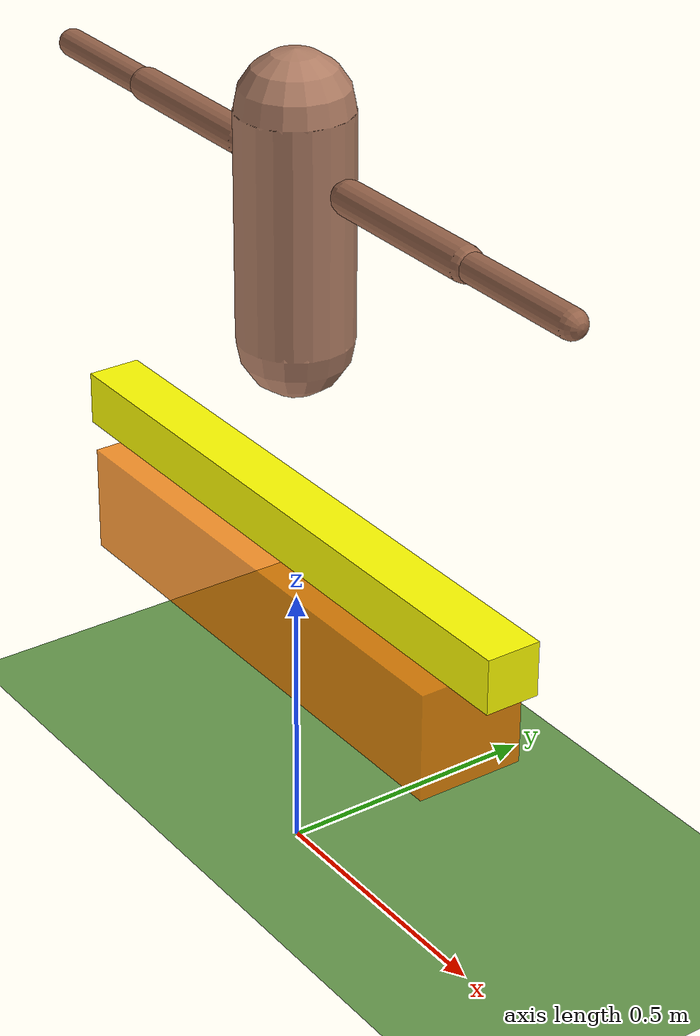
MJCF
<?xml version="1.0" ?>
<mujoco model="myoupperbody_placeholder">
  <option timestep="0.002" gravity="0 0 -9.81" integrator="RK4"/>

  <visual>
    <global offwidth="1024" offheight="1024"/>
    <map znear="0.01" zfar="50"/>
    <headlight diffuse="0.8 0.8 0.8" ambient="0.3 0.3 0.3"/>
  </visual>

  <worldbody>
    <!-- Ground plane -->
    <geom name="floor" type="plane" size="10 10 0.1" rgba="0.4 0.6 0.3 1"/>

    <!-- Placeholder message -->
    <body name="placeholder_info" pos="0 0 0.5">
      <geom name="info_box" type="box" size="0.5 0.1 0.1"
            rgba="1 0.5 0 0.8" mass="1"/>
      <geom name="info_text" type="box" size="0.6 0.05 0.05"
            pos="0 0 0.15" rgba="1 1 0 1"/>
    </body>

    <!-- Simple torso -->
    <body name="torso" pos="0 0 1.0">
      <freejoint/>
      <geom name="torso_geom" type="capsule" fromto="0 0 0 0 0 0.4"
            size="0.1" rgba="0.7 0.5 0.4 1" mass="20"/>

      <!-- Simple arms -->
      <body name="left_arm" pos="-0.15 0 0.3">
        <joint name="l_shoulder" type="hinge" axis="0 1 0" range="-2 2"/>
        <geom name="l_upper_arm" type="capsule" fromto="0 0 0 -0.3 0 0"
              size="0.03" rgba="0.6 0.4 0.3 1" mass="2"/>

        <body name="left_forearm" pos="-0.3 0 0">
          <joint name="l_elbow" type="hinge" axis="0 1 0" range="-2.5 0"/>
          <geom name="l_forearm" type="capsule" fromto="0 0 0 -0.25 0 0"
                size="0.025" rgba="0.6 0.4 0.3 1" mass="1"/>
        </body>
      </body>

      <body name="right_arm" pos="0.15 0 0.3">
        <joint name="r_shoulder" type="hinge" axis="0 1 0" range="-2 2"/>
        <geom name="r_upper_arm" type="capsule" fromto="0 0 0 0.3 0 0"
              size="0.03" rgba="0.6 0.4 0.3 1" mass="2"/>

        <body name="right_forearm" pos="0.3 0 0">
          <joint name="r_elbow" type="hinge" axis="0 1 0" range="-2.5 0"/>
          <geom name="r_forearm" type="capsule" fromto="0 0 0 0.25 0 0"
                size="0.025" rgba="0.6 0.4 0.3 1" mass="1"/>
        </body>
      </body>
    </body>
  </worldbody>

  <actuator>
    <!-- Simplified actuators -->
    <motor name="l_shoulder_motor" joint="l_shoulder" gear="50"/>
    <motor name="l_elbow_motor" joint="l_elbow" gear="30"/>
    <motor name="r_shoulder_motor" joint="r_shoulder" gear="50"/>
    <motor name="r_elbow_motor" joint="r_elbow" gear="30"/>
  </actuator>
</mujoco>
